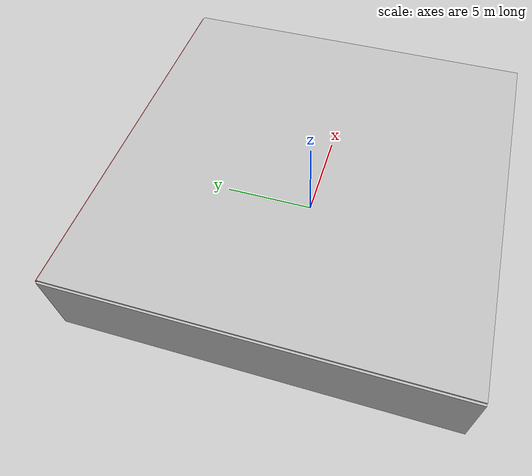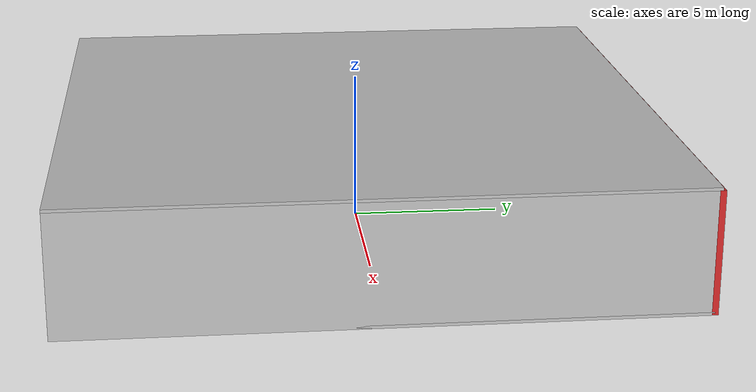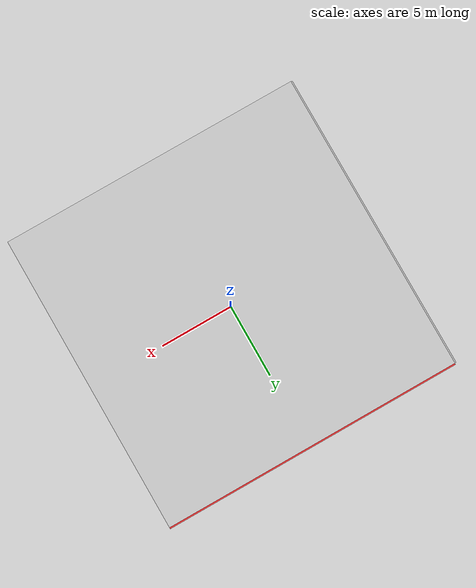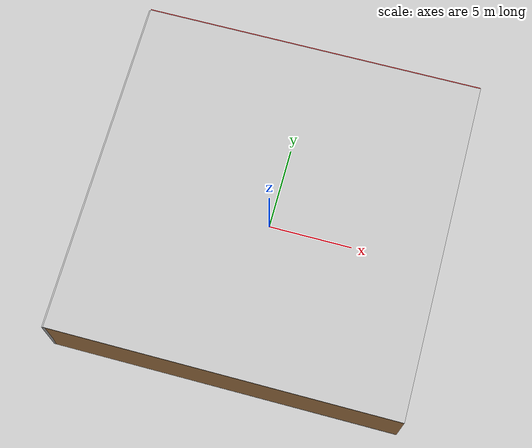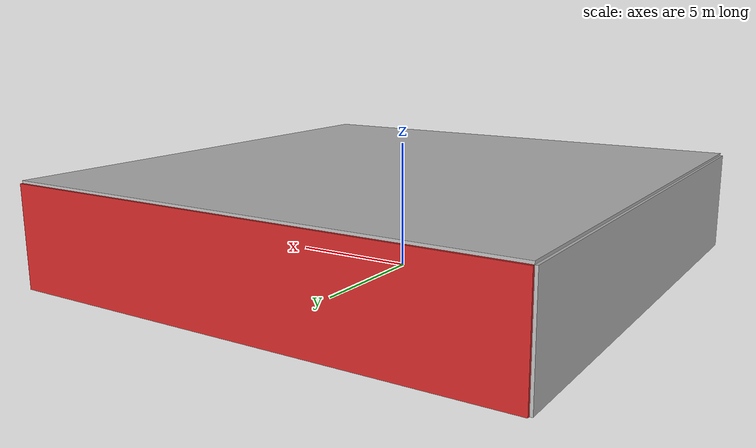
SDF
<sdf version="1.4">
 <world name="default">
  <physics type="ode">
   <max_step_size>0.001</max_step_size>
   <real_time_factor>1</real_time_factor>
   <real_time_update_rate>1000</real_time_update_rate>
   <gravity>0 0 -9.8</gravity>
  </physics>
  <scene><ambient>0.4 0.4 0.4 1</ambient><background>0.7 0.7 0.7 1</background><shadows>1</shadows></scene>
  <model name="Surrounding">
   <static>1</static>
   <link name="Ceiling">
    <collision name="Ceiling_Collision"><geometry><box><size>20 20 0.1</size></box></geometry></collision>
    <visual name="Ceiling_Visual">
     <geometry><box><size>20 20 0.1</size></box></geometry>
     <material>
      <script><uri>file://media/materials/scripts/gazebo.material</uri><name>Gazebo/Pioneer2Body</name></script>
     </material>
    </visual>
    <pose>0 0 4.05 0 0 0</pose>
   </link>
   <link name="Wall_South">
    <collision name="Wall_South_Collision">
     <geometry><box><size>20 0 4</size></box></geometry>
     <pose>0 0 2 0 -0 0</pose>
    </collision>
    <visual name="Wall_South_Visual">
     <pose>0 0 2 0 -0 0</pose>
     <geometry><box><size>20 0 4</size></box></geometry>
     <material>
      <script><uri>file://media/materials/scripts/gazebo.material</uri><name>Gazebo/WoodFloor</name></script>
     </material>
    </visual>
    <velocity_decay><linear>0</linear><angular>0</angular></velocity_decay>
    <pose>0 -10 0 0 -0 0</pose>
   </link>
   <link name="Wall_East">
    <collision name="Wall_21_Collision">
     <geometry><box><size>20 0 4</size></box></geometry>
     <pose>0 0 2 0 -0 0</pose>
    </collision>
    <visual name="Wall_21_Visual">
     <pose>0 0 2 0 -0 0</pose>
     <geometry><box><size>20 0 4</size></box></geometry>
     <material>
      <script><uri>file://media/materials/scripts/gazebo.material</uri><name>Gazebo/LightOff</name></script>
     </material>
    </visual>
    <velocity_decay><linear>0</linear><angular>0</angular></velocity_decay>
    <pose>10 0 0 0 -0 1.5708</pose>
   </link>
   <link name="Wall_North">
    <collision name="Wall_22_Collision">
     <geometry><box><size>20 0.2 4</size></box></geometry>
     <pose>0 0 2 0 -0 0</pose>
    </collision>
    <visual name="Wall_22_Visual">
     <pose>0 0 2 0 -0 0</pose>
     <geometry><box><size>20 0.2 4</size></box></geometry>
     <material>
      <script><uri>file://media/materials/scripts/gazebo.material</uri><name>Gazebo/RedBright</name></script>
     </material>
    </visual>
    <velocity_decay><linear>0</linear><angular>0</angular></velocity_decay>
    <pose>0 10 0 0 -0 0</pose>
   </link>
   <link name="Wall_West">
    <collision name="Wall_23_Collision">
     <geometry><box><size>20 0.2 4</size></box></geometry>
     <pose>0 0 2 0 -0 0</pose>
    </collision>
    <visual name="Wall_23_Visual">
     <pose>0 0 2 0 -0 0</pose>
     <geometry><box><size>20 0.2 4</size></box></geometry>
     <material>
      <script><uri>file://media/materials/scripts/gazebo.material</uri><name>Gazebo/PioneerBody</name></script>
     </material>
    </visual>
    <velocity_decay><linear>0</linear><angular>0</angular></velocity_decay>
    <pose>-10 0 0 0 0 -1.5708</pose>
   </link>
   <link name="Ground_link">
    <collision name="collision">
     <pose>0 0 .05 0 -0 0</pose>
     <geometry><box><size>20 20 0.1</size></box></geometry>
    </collision>
    <visual name="visual">
     <pose>0 0 .05 0 -0 0</pose>
     <geometry><box><size>20 20 0.1</size></box></geometry>
     <material>
      <script><uri>file://media/materials/scripts/gazebo.material</uri><name>Gazebo/JointAnchor</name></script>
     </material>
    </visual>
   </link>
   <static>1</static>
  </model>
  <spherical_coordinates>
   <surface_model>EARTH_WGS84</surface_model>
   <latitude_deg>0</latitude_deg>
   <longitude_deg>0</longitude_deg>
   <elevation>0</elevation>
   <heading_deg>0</heading_deg>
  </spherical_coordinates>
  <light name="lightball_0" type="diffuse">
   <diffuse>0.8 0.8 0.8 1</diffuse>
   <specular>0.2 0.2 0.2 1</specular>
   <attenuation>
    <range>100</range>
    <constant>0.7</constant>
    <linear>0.01</linear>
    <quadratic>0.001</quadratic>
   </attenuation>
   <direction>-0.5 0.1 -0.9</direction>
   <pose>-3.94190471215 -7.98324705789 3.28535775843 0 0 0</pose>
  </light>
  <light name="lightball_1" type="diffuse">
   <diffuse>0.8 0.8 0.8 1</diffuse>
   <specular>0.2 0.2 0.2 1</specular>
   <attenuation>
    <range>100</range>
    <constant>0.7</constant>
    <linear>0.01</linear>
    <quadratic>0.001</quadratic>
   </attenuation>
   <direction>-0.5 0.1 -0.9</direction>
   <pose>7.03934737467 -5.54913354006 0.668913575733 0 0 0</pose>
  </light>
  <light name="lightball_2" type="diffuse">
   <diffuse>0.8 0.8 0.8 1</diffuse>
   <specular>0.2 0.2 0.2 1</specular>
   <attenuation>
    <range>100</range>
    <constant>0.7</constant>
    <linear>0.01</linear>
    <quadratic>0.001</quadratic>
   </attenuation>
   <direction>-0.5 0.1 -0.9</direction>
   <pose>1.96537230878 6.46710325019 3.36099875224 0 0 0</pose>
  </light>
  <light name="lightball_3" type="diffuse">
   <diffuse>0.8 0.8 0.8 1</diffuse>
   <specular>0.2 0.2 0.2 1</specular>
   <attenuation>
    <range>100</range>
    <constant>0.7</constant>
    <linear>0.01</linear>
    <quadratic>0.001</quadratic>
   </attenuation>
   <direction>-0.5 0.1 -0.9</direction>
   <pose>0.62963703464 -4.29967700753 3.61300046459 0 0 0</pose>
  </light>
  <light name="lightball_4" type="diffuse">
   <diffuse>0.8 0.8 0.8 1</diffuse>
   <specular>0.2 0.2 0.2 1</specular>
   <attenuation>
    <range>100</range>
    <constant>0.7</constant>
    <linear>0.01</linear>
    <quadratic>0.001</quadratic>
   </attenuation>
   <direction>-0.5 0.1 -0.9</direction>
   <pose>-4.23640185929 -4.20265233632 3.47515533729 0 0 0</pose>
  </light>
  <light name="lightball_5" type="diffuse">
   <diffuse>0.8 0.8 0.8 1</diffuse>
   <specular>0.2 0.2 0.2 1</specular>
   <attenuation>
    <range>100</range>
    <constant>0.7</constant>
    <linear>0.01</linear>
    <quadratic>0.001</quadratic>
   </attenuation>
   <direction>-0.5 0.1 -0.9</direction>
   <pose>3.77814754409 -7.53309668578 1.18932170256 0 0 0</pose>
  </light>
  <include><uri>model://table</uri><pose>3.56730323353 -0.742609191585 0 0 0 1.862722368</pose></include>
 </world>
</sdf>

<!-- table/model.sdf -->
<sdf version="1.5">
  <model name="table">
    <static>true</static>
    <link name="link">
      <collision name="surface">
        <pose>0 0 1.0 0 0 0</pose>
        <geometry>
          <box>
            <size>1.5 0.8 0.03</size>
          </box>
        </geometry>
        <surface>
          <friction>
            <ode>
              <mu>0.6</mu>
              <mu2>0.6</mu2>
            </ode>
          </friction>
        </surface>
      </collision>
      <visual name="visual1">
        <pose>0 0 1.0 0 0 0</pose>
        <geometry>
          <box>
            <size>1.5 0.8 0.03</size>
          </box>
        </geometry>
        <material>
          <script>
            <uri>model://media/materials/scripts/gazebo.material</uri>
            <name>Gazebo/Wood</name>
          </script>
        </material>
      </visual>
      <collision name="front_left_leg">
        <pose>0.68 0.38 0.5 0 0 0</pose>
        <geometry>
          <cylinder>
            <radius>0.02</radius>
            <length>1.0</length>
          </cylinder>
        </geometry>
      </collision>
      <visual name="front_left_leg">
        <pose>0.68 0.38 0.5 0 0 0</pose>
        <geometry>
          <cylinder>
            <radius>0.02</radius>
            <length>1.0</length>
          </cylinder>
        </geometry>
        <material>
          <script>
            <uri>model://media/materials/scripts/gazebo.material</uri>
            <name>Gazebo/Grey</name>
          </script>
        </material>
      </visual>
      <collision name="front_right_leg">
        <pose>0.68 -0.38 0.5 0 0 0</pose>
        <geometry>
          <cylinder>
            <radius>0.02</radius>
            <length>1.0</length>
          </cylinder>
        </geometry>
      </collision>
      <visual name="front_right_leg">
        <pose>0.68 -0.38 0.5 0 0 0</pose>
        <geometry>
          <cylinder>
            <radius>0.02</radius>
            <length>1.0</length>
          </cylinder>
        </geometry>
        <material>
          <script>
            <uri>model://media/materials/scripts/gazebo.material</uri>
            <name>Gazebo/Grey</name>
          </script>
        </material>
      </visual>
      <collision name="back_right_leg">
        <pose>-0.68 -0.38 0.5 0 0 0</pose>
        <geometry>
          <cylinder>
            <radius>0.02</radius>
            <length>1.0</length>
          </cylinder>
        </geometry>
      </collision>
      <visual name="back_right_leg">
        <pose>-0.68 -0.38 0.5 0 0 0</pose>
        <geometry>
          <cylinder>
            <radius>0.02</radius>
            <length>1.0</length>
          </cylinder>
        </geometry>
        <material>
          <script>
            <uri>model://media/materials/scripts/gazebo.material</uri>
            <name>Gazebo/Grey</name>
          </script>
        </material>
      </visual>
      <collision name="back_left_leg">
        <pose>-0.68 0.38 0.5 0 0 0</pose>
        <geometry>
          <cylinder>
            <radius>0.02</radius>
            <length>1.0</length>
          </cylinder>
        </geometry>
      </collision>
      <visual name="back_left_leg">
        <pose>-0.68 0.38 0.5 0 0 0</pose>
        <geometry>
          <cylinder>
            <radius>0.02</radius>
            <length>1.0</length>
          </cylinder>
        </geometry>
        <material>
          <script>
            <uri>model://media/materials/scripts/gazebo.material</uri>
            <name>Gazebo/Grey</name>
          </script>
        </material>
      </visual>
    </link>
  </model>
</sdf>
